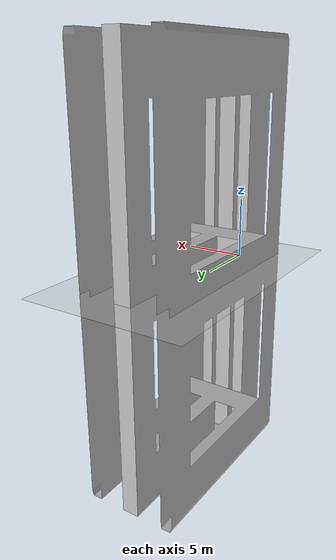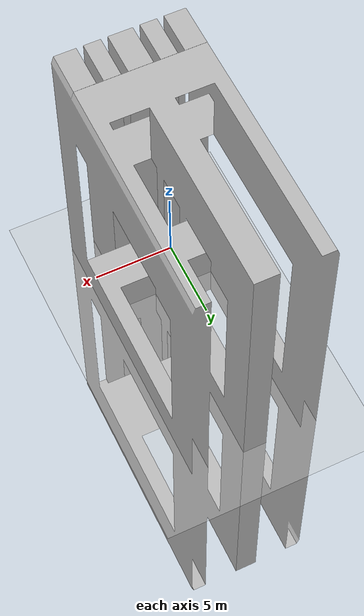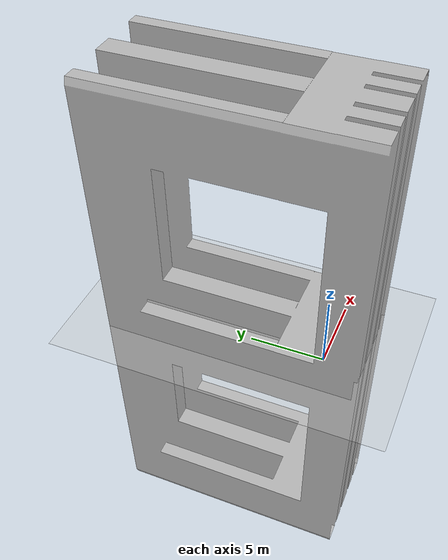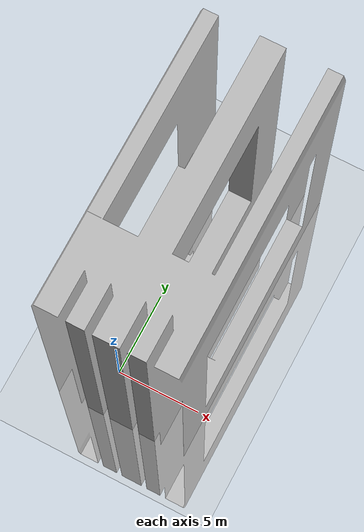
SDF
<?xml version="1.0" ?>
<sdf version="1.4">
  <world name="default">
    <physics type='ode'>
      <gravity>0 0 -9.81</gravity>
      <!-- max step size has to be a multiple of the desired task rate-->
      <max_step_size>0.001</max_step_size>
      <real_time_factor>1</real_time_factor>
    </physics>
    <!-- A global light source -->
    <include>
      <uri>model://sun</uri>
    </include>
    <!-- A ground plane -->
    <include>
      <uri>model://ground_plane</uri>
    </include>
    <include>
      <name>pallet</name>
      <uri>model://pallet27cm</uri>
      <pose>1.5 0.0 0.05 0 0 3.14</pose>
    </include>
  </world>
</sdf>

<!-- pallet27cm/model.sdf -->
<sdf version="1.4">
	<model name="pallet27cm">
		<static>true</static>
		<link name="link">
			<pose>0 0 0.06 0 0 0</pose>
			<collision name="collision">
				<geometry>
					<mesh>
						<uri>model://pallet_benchmark/mesh/pallet.dae</uri>
						<scale>1.0 11.81 3</scale>
					</mesh>
				</geometry>

			</collision>
			<visual name="visual">
				<geometry>
					<mesh>
						<uri>model://pallet_benchmark/mesh/pallet.dae</uri>
						<scale>1.0 11.81 3</scale>
					</mesh>
				</geometry>
			</visual>
		</link>
	</model>
</sdf>
